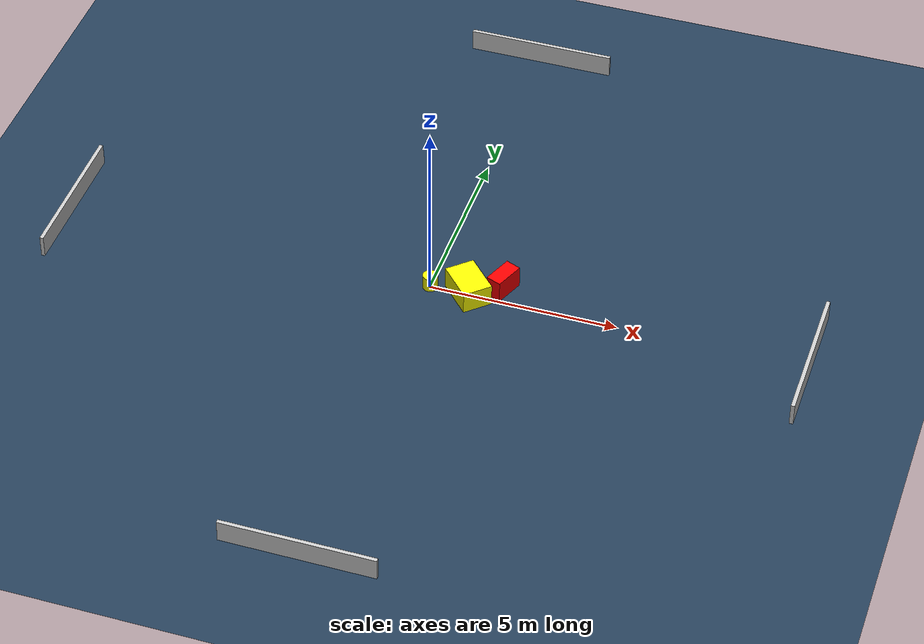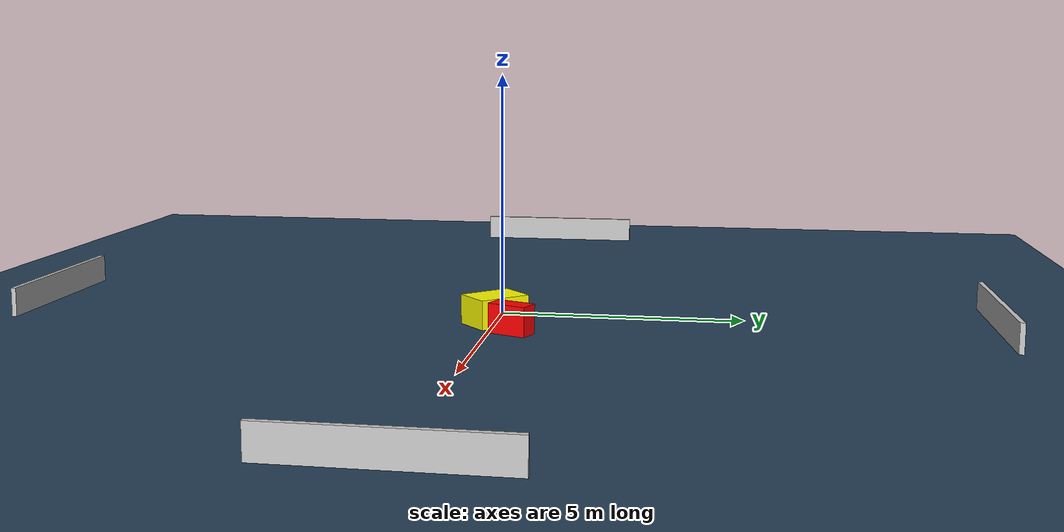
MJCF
<?xml version="1.0" ?>
<mujoco model="generated_environment">
  <option timestep="0.01" integrator="RK4" cone="elliptic"/>
  <default>
    <geom density="1"/>
  </default>
  <asset>
    <texture builtin="gradient" height="3072" name="skybox" rgb1="0.3 0.5 0.7" rgb2="0 0 0" type="skybox" width="512"/>
    <texture builtin="checker" height="300" name="groundplane" rgb1="0.2 0.3 0.4" rgb2="0.1 0.2 0.3" type="2d" width="300"/>
    <material name="groundplane" reflectance="0.2" texrepeat="5 5" texture="groundplane"/>
  </asset>
  <worldbody>
    <light dir="0 0 -1" directional="true" pos="0 0 1.5"/>
    <geom condim="3" friction="0.5 0.005 0.001" material="groundplane" name="floor" pos="0 0 0" size="0 0 0.05" type="plane"/>
    <body name="walls">
      <geom name="wall_1" condim="4" pos="-10.0 0.0 0.3" rgba="0.800000011920929 0.800000011920929 0.800000011920929 1.0" size="0.05 2.0 0.3" type="box"/>
      <geom name="wall_2" condim="4" pos="10.0 0.0 0.3" rgba="0.800000011920929 0.800000011920929 0.800000011920929 1.0" size="0.05 2.0 0.3" type="box"/>
      <geom name="wall_3" condim="4" pos="0.0 -10.0 0.3" rgba="0.800000011920929 0.800000011920929 0.800000011920929 1.0" size="2.0 0.05 0.3" type="box"/>
      <geom name="wall_4" condim="4" pos="0.0 10.0 0.3" rgba="0.800000011920929 0.800000011920929 0.800000011920929 1.0" size="2.0 0.05 0.3" type="box"/>
    </body>
    <body name="robot">
      <joint name="joint_x" type="slide" pos="0 0 0" axis="1 0 0"/>
      <joint name="joint_y" type="slide" pos="0 0 0" axis="0 1 0"/>
      <geom name="robot" type="cylinder" pos="0.0 0.0 0.2" size="0.2 0.2 0.0" mass="5.0" friction="1.0 0.005 0.0001" condim="4" rgba="1.0 1.0 0.0 1.0"/>
    </body>
    <body name="obstacle_1_movable">
      <geom name="obstacle_1_movable" condim="4" pos="1.027269947877292 0.00905515086762192 0.3" euler="0 0 42.659080033714744" friction="0.0 0.005 0.001" rgba="1.0 1.0 0.0 1.0" size="0.3990075884251592 0.5595583806924591 0.3" type="box" mass="0.1"/>
      <joint type="free"/>
    </body>
    <body name="obstacle_2_static">
      <geom name="obstacle_2_static" condim="4" pos="1.8238883653954372 0.4674285280666906 0.3" euler="0 0 158.04120186901605" friction="0.0 0.005 0.001" rgba="1.0 0.0 0.0 1.0" size="0.20885835395236652 0.412583858375716 0.3" type="box"/>
    </body>
  </worldbody>
  <actuator>
    <motor name="actuator_x" joint="joint_x" gear="1" ctrlrange="-1 1"/>
    <motor name="actuator_y" joint="joint_y" gear="1" ctrlrange="-1 1"/>
  </actuator>
</mujoco>
